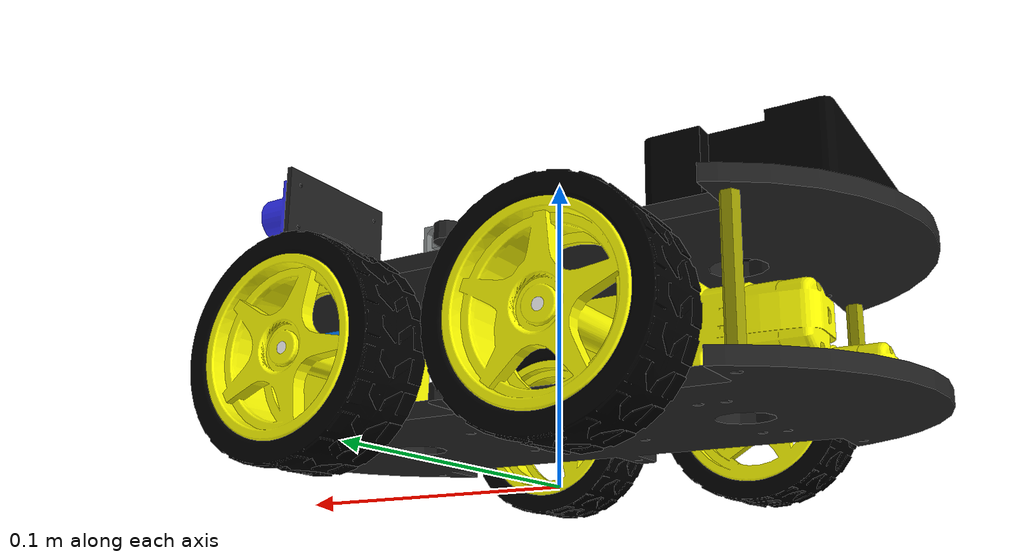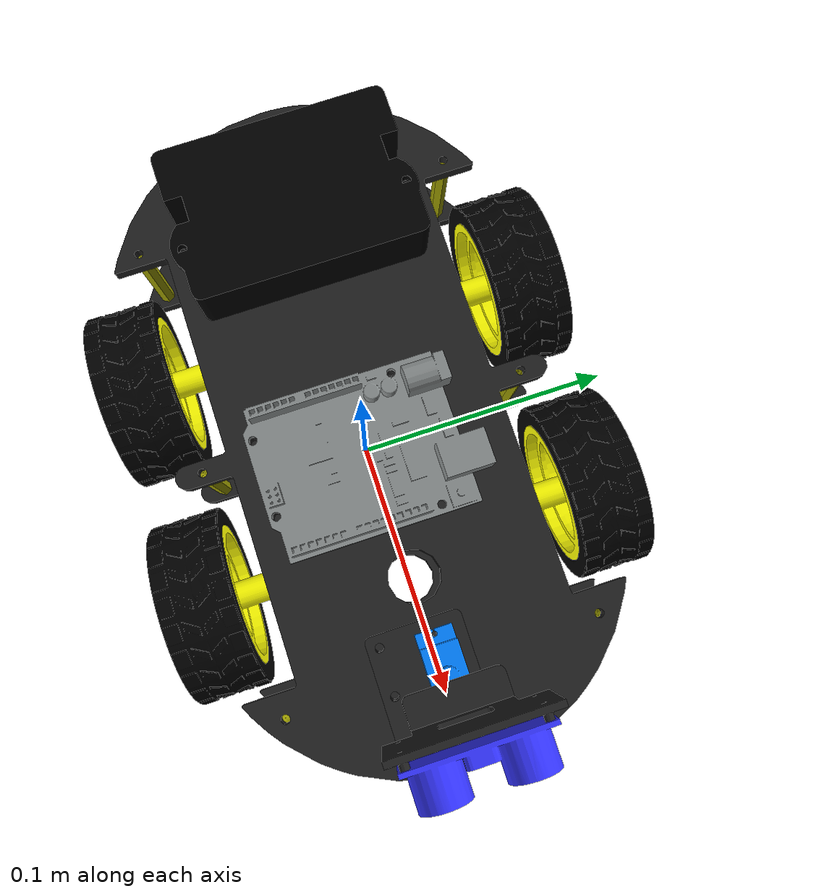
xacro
<?xml version="1.0" encoding="utf-8"?>
<robot name="elegoo_car_v3_description" xmlns:xacro="http://ros.org/wiki/xacro">
<!--____________________XACRO PROPERTIES___________________-->
<xacro:include filename="$(find elegoo_car_v3_description)/urdf/colors_and_materials.xacro"/>
<xacro:include filename="$(find elegoo_car_v3_description)/urdf/elegoo_car_v3_gazebo.urdf.xacro"/>
<!-- __________________ BASE LINK DEFINITION______________-->
    <link
        name="base_link">
        <inertial>
        <origin
            xyz="7.8956E-05 3.7218E-10 0.01835"
            rpy="0 0 0" />
        <mass
            value="0.12979" />
        <inertia
            ixx="0.00011062"
            ixy="2.9142E-12"
            ixz="-9.523E-20"
            iyy="0.00055967"
            iyz="7.1958E-20"
            izz="0.00066974" />
        </inertial>
        <visual>
        <origin
            xyz="0 0 0"
            rpy="0 0 0" />
        <geometry>
            <mesh
            filename="package://elegoo_car_v3_description/meshes/base_link.STL" />
        </geometry>
        <material name="black_acrilic"/>
        </visual>
        <collision>
        <origin
            xyz="0 0 0"
            rpy="0 0 0" />
        <geometry>
            <mesh
            filename="package://elegoo_car_v3_description/meshes/base_link.STL" />
        </geometry>
        </collision>
    </link>
<!--______________________XACRO MACROS_____________________-->
    <xacro:macro name="wheel_structure" params="num front dir">
        <!-- param: front (1=front or -1=back) -->
        <!-- param: dir (-1=right or 1=left) -->
        <!-- param: num (1, 2 , 3 or 4) -->
        <link
            name="support_${num}">
            <inertial>
            <origin
                xyz="${front*0.0206} ${dir*0.002} 0.0022054"
                rpy="0 0 0" />
            <mass
                value="0.002712" />
            <inertia
                ixx="1.3812E-07"
                ixy="-1.5174E-12"
                ixz="-1.1415E-22"
                iyy="1.4133E-07"
                iyz="2.5856E-23"
                izz="1.0916E-08" />
            </inertial>
            <visual>
            <origin
                xyz="0 0 0"
                rpy="0 0 0" />
            <geometry>
                <mesh
                filename="package://elegoo_car_v3_description/meshes/support_${num}.STL" />
            </geometry>
            <material name="gray_metal"/>
            </visual>
            <collision>
            <origin
                xyz="0 0 0"
                rpy="0 0 0" />
            <geometry>
                <mesh
                filename="package://elegoo_car_v3_description/meshes/support_1.STL" />
            </geometry>
            </collision>
        </link>
        <joint
            name="base_to_support_${num}"
            type="fixed">
            <origin
                xyz="${front*0.040775} ${dir*0.027} 0.03195"
                rpy="0 0 0" />
            <parent
                link="base_link" />
            <child
                link="support_${num}" />
            <axis
                xyz="0 0 0" />
        </joint>
        <link
            name="motor_${num}">
            <inertial>
            <origin
                xyz="${front*0.020411} ${dir*0.0094} 2.237E-11"
                rpy="0 0 0" />
            <mass
                value="0.031419" />
            <inertia
                ixx="2.0235E-06"
                ixy="1.6886E-14"
                ixz="-1.2125E-14"
                iyy="1.1082E-05"
                iyz="-1.6357E-14"
                izz="1.0806E-05" />
            </inertial>
            <visual>
            <origin
                xyz="0 0 0"
                rpy="0 0 0" />
            <geometry>
                <mesh
                filename="package://elegoo_car_v3_description/meshes/motor_${num}.STL" />
            </geometry>
            <material name="yellow"/>
            </visual>
            <collision>
            <origin
                xyz="0 0 0"
                rpy="0 0 0" />
            <geometry>
                <mesh
                filename="package://elegoo_car_v3_description/meshes/motor_${num}.STL" />
            </geometry>
            </collision>
        </link>
        <joint
            name="support_to_motor_${num}"
            type="fixed">
            <origin
                xyz="0 0 0"
                rpy="0 0 0" />
            <parent
                link="support_${num}" />
            <child
             link="motor_${num}" />
            <axis
                xyz="0 0 0" />
        </joint>
        <link
            name="shaft_${num}">
            <inertial>
            <origin
                xyz="0 0.02675 3.46944695195361E-18"
                rpy="0 0 0" />
            <mass
                value="0.000688404533635746" />
            <inertia
                ixx="1.64741049166689E-07"
                ixy="-4.60027404729313E-24"
                ixz="1.12714129041243E-26"
                iyy="1.08445226689306E-09"
                iyz="-1.34835384402889E-26"
                izz="1.64741049166689E-07" />
            </inertial>
            <visual>
            <origin
                xyz="0 0 0"
                rpy="0 0 0" />
            <geometry>
                <mesh
                filename="package://elegoo_car_v3_description/meshes/shaft_${num}.STL" />
            </geometry>
                <material name="white"/>
            </visual>
            <collision>
            <origin
                xyz="0 0 0"
                rpy="0 0 0" />
            <geometry>
                <mesh
                filename="package://elegoo_car_v3_description/meshes/shaft_${num}.STL" />
            </geometry>
            </collision>
        </link>
        <joint
            name="motor_to_shaft_${num}"
            type="continuous">
            <origin
                xyz="0 0 0"
                rpy="0 0 0" />
            <parent
                link="motor_${num}" />
            <child
                link="shaft_${num}" />
            <axis
                xyz="0 1 0" />
            <limit
                effort="0.09807"
                velocity="23" />
        </joint>
        <link
            name="ring_${num}">
            <!-- Add conditions for origin (changes in all cases)-->
            <inertial>
            <origin
                xyz="-3.5564E-09 0.043828 -9.0266E-10"
                rpy="0 0 0" />
            <mass
                value="0.022657" />
            <inertia
                ixx="6.7493E-06"
                ixy="4.2926E-13"
                ixz="-1.1158E-12"
                iyy="1.0295E-05"
                iyz="1.0895E-13"
                izz="6.7493E-06" />
            </inertial>
            <visual>
            <origin
                xyz="0 0 0"
                rpy="0 0 0" />
            <geometry>
                <mesh
                filename="package://elegoo_car_v3_description/meshes/ring_${num}.STL" />
            </geometry>
            <material name="yellow"/>
            </visual>
            <collision>
            <origin
                xyz="0 0 0"
                rpy="0 0 0" />
            <geometry>
                <mesh
                filename="package://elegoo_car_v3_description/meshes/ring_${num}.STL" />
            </geometry>
            </collision>
        </link>
        <joint
            name="shaft_to_ring_${num}"
            type="fixed">
            <origin
            xyz="0 0 0"
            rpy="0 0 0" />
            <parent
            link="shaft_${num}" />
            <child
            link="ring_${num}" />
            <axis
            xyz="0 0 0" />
            <limit
            effort="0.07845"
            velocity="23" />
        </joint>
        <link
            name="neumatic_${num}">
            <inertial>
            <origin
                xyz="-2.7756E-17 ${dir*-1*0.04378} 1.3878E-17"
                rpy="0 0 0" />
            <mass
                value="0.038076" />
            <inertia
                ixx="1.8373E-05"
                ixy="1.3492E-17"
                ixz="3.3873E-16"
                iyy="3.2593E-05"
                iyz="-1.1594E-17"
                izz="1.8373E-05" />
            </inertial>
            <visual>
            <origin
                xyz="0 0 0"
                rpy="0 0 0" />
            <geometry>
                <mesh
                filename="package://elegoo_car_v3_description/meshes/neumatic_${num}.STL" />
            </geometry>
            <material name="black"/>
            </visual>
            <collision>
            <origin
                xyz="0 0 0"
                rpy="0 0 0" />
            <geometry>
                <mesh
                filename="package://elegoo_car_v3_description/meshes/neumatic_${num}.STL" />
            </geometry>
            </collision>
        </link>
        <joint
            name="ring_to_neumatic_${num}"
            type="fixed">
            <origin
            xyz="0 0 0"
            rpy="0 0 0" />
            <parent
            link="ring_${num}" />
            <child
            link="neumatic_${num}" />
            <axis
            xyz="0 0 0" />
        </joint>
      <transmission name="motor_to_shaft_${num}_transmission">
        <type>transmission_interface/SimpleTransmission</type>
        <joint name="motor_to_shaft_${num}">
            <hardwareInterface>VelocityJointInterface</hardwareInterface>
        </joint>
        <actuator name="motor_to_shaft_${num}_motor">
            <mechanicalReduction>1</mechanicalReduction>
        </actuator>
      </transmission>
    </xacro:macro>

    <xacro:macro name="hex_supports" params="num x y z">
        <link
        name="hex_support_${num}">
        <inertial>
        <origin
            xyz="${x} ${y} ${z}"
            rpy="0 0 0" />
        <mass
            value="0.0055008" />
        <inertia
            ixx="6.5676E-07"
            ixy="-4.8058E-13"
            ixz="-1.0193E-12"
            iyy="6.5677E-07"
            iyz="1.1258E-12"
            izz="1.9767E-08" />
        </inertial>
        <visual>
            <origin
                xyz="0 0 0"
                rpy="0 0 0" />
            <geometry>
                <mesh
                filename="package://elegoo_car_v3_description/meshes/hex_support_${num}.STL" />
            </geometry>
            <material name="gold"/>
            </visual>
            <collision>
            <origin
                xyz="0 0 0"
                rpy="0 0 0" />
            <geometry>
                <mesh
                filename="package://elegoo_car_v3_description/meshes/hex_support_${num}.STL" />
            </geometry>
            </collision>
        </link>
        <joint
            name="base_to_hex_support_${num}"
            type="fixed">
            <origin
            xyz="0 0 0"
            rpy="0 0 0" />
            <parent
            link="base_link" />
            <child
            link="hex_support_${num}" />
            <axis
            xyz="0 0 0" />
    </joint>
    </xacro:macro>

<!-- _________________ MODEL DEFINITIONS _______________-->

    <xacro:wheel_structure num="1" front="1" dir="1"/>
    <xacro:wheel_structure num="2" front="-1" dir="1"/>
    <xacro:wheel_structure num="3" front="-1" dir="-1"/>
    <xacro:wheel_structure num="4" front="1" dir="-1"/>
    <xacro:hex_supports num="1" x="0.08395" y="0.05315" z="0.04085" />
    <xacro:hex_supports num="2" x="2.0042E-08" y="0.05605" z="0.04085" />
    <xacro:hex_supports num="3" x="-0.08005" y="0.05555" z="0.04085" />
    <xacro:hex_supports num="4" x="-0.08005" y="-0.05555" z="0.04085" />
    <xacro:hex_supports num="5" x="2.0042E-08" y="-0.05605" z="0.04085" />
    <xacro:hex_supports num="6" x="0.08395" y="-0.05315" z="0.04085" />

<!-- _________________ PLAIN DEFINITIONS _________________-->
    <link
    name="medium_plate">
    <inertial>
      <origin
        xyz="0 0 0"
        rpy="0 0 0" />
      <mass
        value="0" />
      <inertia
        ixx="0"
        ixy="0"
        ixz="0"
        iyy="0"
        iyz="0"
        izz="0" />
    </inertial>
    <visual>
      <origin
        xyz="0 0 0"
        rpy="0 0 0" />
      <geometry>
        <mesh
          filename="package://elegoo_car_v3_description/meshes/medium_plate.STL" />
      </geometry>
      <material name="black_acrilic"/>
    </visual>
    <collision>
      <origin
        xyz="0 0 0"
        rpy="0 0 0" />
      <geometry>
        <mesh
          filename="package://elegoo_car_v3_description/meshes/medium_plate.STL" />
      </geometry>
    </collision>
  </link>
  <joint
    name="base_to_medium_plate"
    type="fixed">
    <origin
      xyz="0 0 0"
      rpy="0 0 0" />
    <parent
      link="base_link" />
    <child
      link="medium_plate" />
    <axis
      xyz="0 0 0" />
  </joint>
  <link
    name="batery">
    <inertial>
      <origin
        xyz="-0.0756 -2.57123578269955E-16 0.0770886438964631"
        rpy="0 0 0" />
      <mass
        value="0.11955814092686" />
      <inertia
        ixx="6.44366513889035E-05"
        ixy="1.00749461501455E-19"
        ixz="-1.40949949997757E-22"
        iyy="3.41583566343059E-05"
        iyz="4.1091423456621E-22"
        izz="8.81872221606157E-05" />
    </inertial>
    <visual>
      <origin
        xyz="0 0 0"
        rpy="0 0 0" />
      <geometry>
        <mesh
          filename="package://elegoo_car_v3_description/meshes/batery.STL" />
      </geometry>
      <material name="black"/>
    </visual>
    <collision>
      <origin
        xyz="0 0 0"
        rpy="0 0 0" />
      <geometry>
        <mesh
          filename="package://elegoo_car_v3_description/meshes/batery.STL" />
      </geometry>
    </collision>
  </link>
  <joint
    name="medium_plate_to_batey"
    type="fixed">
    <origin
      xyz="0 0 0"
      rpy="0 0 0" />
    <parent
      link="medium_plate" />
    <child
      link="batery" />
    <axis
      xyz="0 0 0" />
  </joint>
  <link
    name="arduino">
    <inertial>
      <origin
        xyz="0.0113638835773716 -0.00145317601065383 0.0691161344023989"
        rpy="0 0 0" />
      <mass
        value="0.0368263873637664" />
      <inertia
        ixx="1.61184372892082E-05"
        ixy="-1.48754035200814E-07"
        ixz="-2.26027282617775E-08"
        iyy="1.01914424989913E-05"
        iyz="-5.69833304502954E-07"
        izz="2.55986783826354E-05" />
    </inertial>
    <visual>
      <origin
        xyz="0 0 0"
        rpy="0 0 0" />
      <geometry>
        <mesh
          filename="package://elegoo_car_v3_description/meshes/arduino.STL" />
      </geometry>
      <material name="gray_base"/>
    </visual>
    <collision>
      <origin
        xyz="0 0 0"
        rpy="0 0 0" />
      <geometry>
        <mesh
          filename="package://elegoo_car_v3_description/meshes/arduino.STL" />
      </geometry>
    </collision>
  </link>
  <joint
    name="medium_plate_to_arduino"
    type="fixed">
    <origin
      xyz="0 0 0"
      rpy="0 0 0" />
    <parent
      link="medium_plate" />
    <child
      link="arduino" />
    <axis
      xyz="0 0 0" />
  </joint>
  <link
    name="servo_base">
    <inertial>
      <origin
        xyz="-0.00515 -0.0073693 -0.0157"
        rpy="0 0 0" />
      <mass
        value="0.0034312" />
      <inertia
        ixx="3.3119E-07"
        ixy="-3.8092E-23"
        ixz="1.5854E-24"
        iyy="5.3664E-07"
        iyz="-3.1888E-24"
        izz="8.6366E-07" />
    </inertial>
    <visual>
      <origin
        xyz="0 0 0"
        rpy="0 0 0" />
      <geometry>
        <mesh
          filename="package://elegoo_car_v3_description/meshes/servo_base.STL" />
      </geometry>
      <material name="black_acrilic"/>
    </visual>
    <collision>
      <origin
        xyz="0 0 0"
        rpy="0 0 0" />
      <geometry>
        <mesh
          filename="package://elegoo_car_v3_description/meshes/servo_base.STL" />
      </geometry>
    </collision>
  </link>
  <joint
    name="medium_plate_to_servo_base"
    type="fixed">
    <origin
      xyz="0.09295 0.0001 0.0829"
      rpy="0 0 0" />
    <parent
      link="medium_plate" />
    <child
      link="servo_base" />
    <axis
      xyz="0 0 0" />
  </joint>
  <link
    name="servo">
    <inertial>
      <origin
        xyz="-0.0048466 -4.6202E-10 -0.018288"
        rpy="0 0 0" />
      <mass
        value="0.0091401" />
      <inertia
        ixx="6.3298E-07"
        ixy="-2.0846E-15"
        ixz="-3.5208E-08"
        iyy="9.5399E-07"
        iyz="3.6389E-14"
        izz="5.5455E-07" />
    </inertial>
    <visual>
      <origin
        xyz="0 0 0"
        rpy="0 0 0" />
      <geometry>
        <mesh
          filename="package://elegoo_car_v3_description/meshes/servo.STL" />
      </geometry>
      <material name="blue_servo"/>
    </visual>
    <collision>
      <origin
        xyz="0 0 0"
        rpy="0 0 0" />
      <geometry>
        <mesh
          filename="package://elegoo_car_v3_description/meshes/servo.STL" />
      </geometry>
    </collision>
  </link>
  <joint
    name="servo_base_to_servo"
    type="fixed">
    <origin
      xyz="0 0 0"
      rpy="0 0 0" />
    <parent
      link="servo_base" />
    <child
      link="servo" />
    <axis
      xyz="0 0 0" />
  </joint>
  <link
    name="servo_shaft">
    <inertial>
      <origin
        xyz="0 2.7105E-20 -0.00325"
        rpy="0 0 0" />
      <mass
        value="0.00017405" />
      <inertia
        ixx="8.74E-10"
        ixy="1.6327E-26"
        ixz="3.1812E-26"
        iyy="8.74E-10"
        iyz="-1.5906E-26"
        izz="5.2238E-10" />
    </inertial>
    <visual>
      <origin
        xyz="0 0 0"
        rpy="0 0 0" />
      <geometry>
        <mesh
          filename="package://elegoo_car_v3_description/meshes/servo_shaft.STL" />
      </geometry>
      <material name="black_acrilic"/>
    </visual>
    <collision>
      <origin
        xyz="0 0 0"
        rpy="0 0 0" />
      <geometry>
        <mesh
          filename="package://elegoo_car_v3_description/meshes/servo_shaft.STL" />
      </geometry>
    </collision>
  </link>
  <joint
    name="servo_to_shaft"
    type="continuous">
    <origin
      xyz="0 0 0"
      rpy="0 0 0" />
    <parent
      link="servo" />
    <child
      link="servo_shaft" />
    <axis
      xyz="0 0 1" />
    <limit
      lower="-1.571"
      upper="1.571"
      effort="0.0907"
      velocity="0.7" />
  </joint>
  <link
    name="ultrasonic_support">
    <inertial>
      <origin
        xyz="0.0037659 -6.4258E-07 0.016271"
        rpy="0 0 0" />
      <mass
        value="0.0052953" />
      <inertia
        ixx="1.7319E-06"
        ixy="-5.2305E-10"
        ixz="-1.0423E-07"
        iyy="8.2025E-07"
        iyz="-5.2331E-13"
        izz="9.9478E-07" />
    </inertial>
    <visual>
      <origin
        xyz="0 0 0"
        rpy="0 0 0" />
      <geometry>
        <mesh
          filename="package://elegoo_car_v3_description/meshes/ultrasonic_support.STL" />
      </geometry>
      <material name="black_acrilic"/>
    </visual>
    <collision>
      <origin
        xyz="0 0 0"
        rpy="0 0 0" />
      <geometry>
        <mesh
          filename="package://elegoo_car_v3_description/meshes/ultrasonic_support.STL" />
      </geometry>
    </collision>
  </link>
  <joint
    name="servo_shaft_to_ultrasonic_support"
    type="fixed">
    <origin
      xyz="0 0 0"
      rpy="0 0 0" />
    <parent
      link="servo_shaft" />
    <child
      link="ultrasonic_support" />
    <axis
      xyz="0 0 0" />
  </joint>
  <link
    name="ultrasonic_sensor">
    <inertial>
      <origin
        xyz="0.013019 -7.4444E-06 0.022811"
        rpy="0 0 0" />
      <mass
        value="0.010497" />
      <inertia
        ixx="2.1159E-06"
        ixy="-9.5555E-10"
        ixz="2.1483E-09"
        iyy="4.4472E-07"
        iyz="-1.2284E-12"
        izz="1.9912E-06" />
    </inertial>
    <visual>
      <origin
        xyz="0 0 0"
        rpy="0 0 0" />
      <geometry>
        <mesh
          filename="package://elegoo_car_v3_description/meshes/ultrasonic_sensor.STL" />
      </geometry>
      <material name="blue_ultrasonic"/>
    </visual>
    <collision>
      <origin
        xyz="0 0 0"
        rpy="0 0 0" />
      <geometry>
        <mesh
          filename="package://elegoo_car_v3_description/meshes/ultrasonic_sensor.STL" />
      </geometry>
    </collision>
  </link>
  <joint
    name="ultrasonic_support_to_ultrasonic_sensor"
    type="fixed">
    <origin
      xyz="0 0 0"
      rpy="0 0 0" />
    <parent
      link="ultrasonic_support" />
    <child
      link="ultrasonic_sensor" />
    <axis
      xyz="0 0 0" />
  </joint>
  <transmission name="servo_to_shaft_transmission">
    <type>transmission_interface/SimpleTransmission</type>
    <joint name="servo_to_shaft">
        <hardwareInterface>VelocityJointInterface</hardwareInterface>
    </joint>
    <actuator name="servo_to_shaft_motor">
        <mechanicalReduction>1</mechanicalReduction>
    </actuator>
  </transmission>
</robot>

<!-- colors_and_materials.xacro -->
<robot name="xacro_properties" xmlns:xacro="http://ros.org/wiki/xacro">
    <material name="black_acrilic">
        <color rgba="0.1254 0.1254 0.1254 0.95"/>
    </material>
    <material name="black">
        <color rgba="0 0 0 1"/>
    </material>
    <material name="gray_metal">
        <color rgba="0.6274 0.6274 0.6274 1"/>
    </material>
    <material name="gray_base">
        <color rgba="0.529411 0.549019 0.549019 1"/>
    </material>
    <material name="blue_servo">
        <color rgba="0 0.50 1 1"/>
    </material>
    <material name="blue_ultrasonic">
        <color rgba="0.2 0.2 1 1"/>
    </material>
    <material name="yellow">
        <color rgba="1 1 0 1"/>
    </material>
    <material name="gold">
        <color rgba="0.6 0.6 0 1"/>
    </material>
    <material name="white">
        <color rgba="1 1 1 1"/>
    </material>
</robot>
